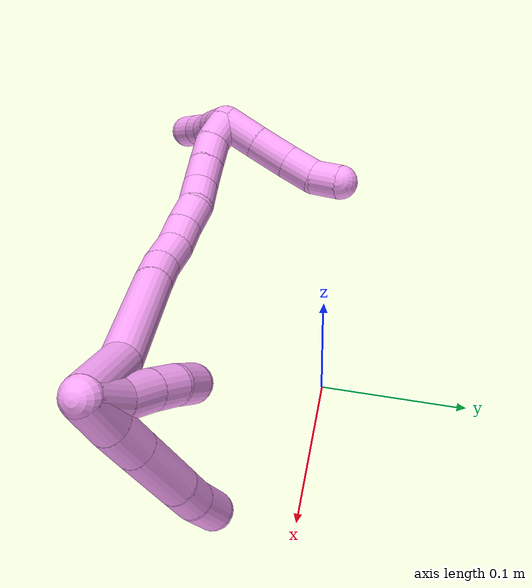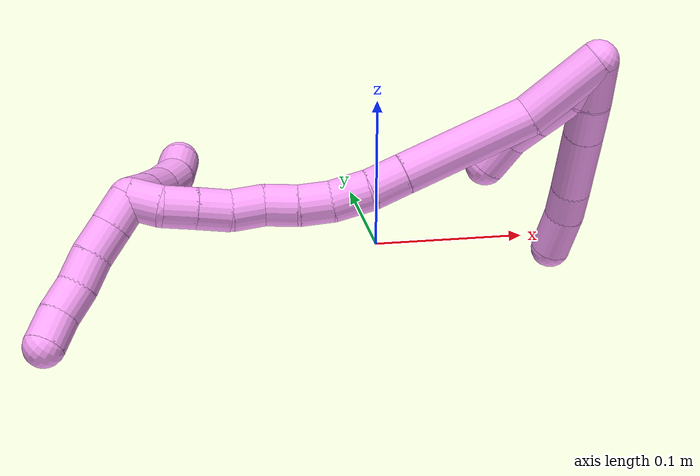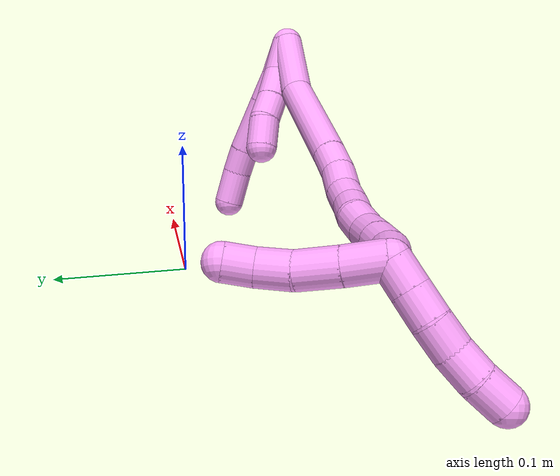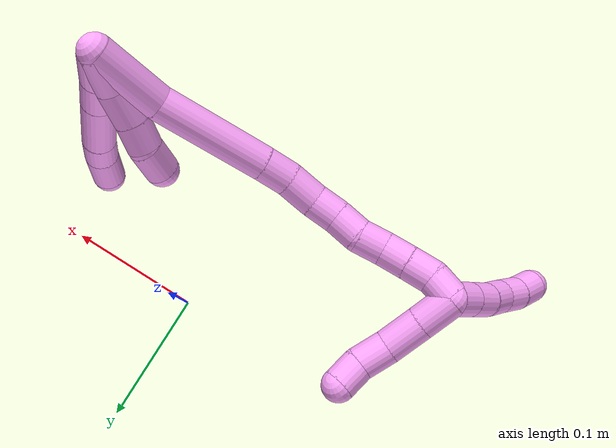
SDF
<sdf version="1.7">
 <world name="default">
  <model name="4">
   <static>0</static>
   <link name="4">
    <collision name="collision-cylinder-e_1_2_8">
     <pose>0.008837 0.002253 -0.011585 -2.94952 0.642718 -2.57823</pose>
     <geometry><cylinder><radius>0.0125</radius><length>0.029487</length></cylinder></geometry>
     <surface>
      <friction><ode><mu>1.16</mu><mu2>1.16</mu2><slip1>0</slip1><slip2>0</slip2></ode></friction>
      <contact><ode><kp>1e+06</kp><kd>1</kd><max_vel>0</max_vel><min_depth>0.001</min_depth></ode></contact>
     </surface>
    </collision>
    <visual name="visual-cylinder-e_1_2_8">
     <pose>0.008837 0.002253 -0.011585 -2.94952 0.642718 -2.57823</pose>
     <geometry><cylinder><radius>0.0125</radius><length>0.029487</length></cylinder></geometry>
     <material><ambient>1 0.65098 0.996078 1</ambient></material>
    </visual>
    <collision name="collision-cylinder-e_2_8_9">
     <pose>0.025137 0.007556 -0.032933 -2.83882 0.630295 -2.26625</pose>
     <geometry><cylinder><radius>0.0125</radius><length>0.025324</length></cylinder></geometry>
     <surface>
      <friction><ode><mu>1.16</mu><mu2>1.16</mu2><slip1>0</slip1><slip2>0</slip2></ode></friction>
      <contact><ode><kp>1e+06</kp><kd>1</kd><max_vel>0</max_vel><min_depth>0.001</min_depth></ode></contact>
     </surface>
    </collision>
    <visual name="visual-cylinder-e_2_8_9">
     <pose>0.025137 0.007556 -0.032933 -2.83882 0.630295 -2.26625</pose>
     <geometry><cylinder><radius>0.0125</radius><length>0.025324</length></cylinder></geometry>
     <material><ambient>1 0.65098 0.996078 1</ambient></material>
    </visual>
    <collision name="collision-cylinder-e_3_9_10">
     <pose>0.046018 0.016107 -0.060485 -2.84163 0.624494 -2.26594</pose>
     <geometry><cylinder><radius>0.0125</radius><length>0.045902</length></cylinder></geometry>
     <surface>
      <friction><ode><mu>1.16</mu><mu2>1.16</mu2><slip1>0</slip1><slip2>0</slip2></ode></friction>
      <contact><ode><kp>1e+06</kp><kd>1</kd><max_vel>0</max_vel><min_depth>0.001</min_depth></ode></contact>
     </surface>
    </collision>
    <visual name="visual-cylinder-e_3_9_10">
     <pose>0.046018 0.016107 -0.060485 -2.84163 0.624494 -2.26594</pose>
     <geometry><cylinder><radius>0.0125</radius><length>0.045902</length></cylinder></geometry>
     <material><ambient>1 0.65098 0.996078 1</ambient></material>
    </visual>
    <collision name="collision-cylinder-e_4_10_11">
     <pose>0.065323 0.023448 -0.086929 -2.93225 0.586896 -2.47241</pose>
     <geometry><cylinder><radius>0.0125</radius><length>0.021257</length></cylinder></geometry>
     <surface>
      <friction><ode><mu>1.16</mu><mu2>1.16</mu2><slip1>0</slip1><slip2>0</slip2></ode></friction>
      <contact><ode><kp>1e+06</kp><kd>1</kd><max_vel>0</max_vel><min_depth>0.001</min_depth></ode></contact>
     </surface>
    </collision>
    <visual name="visual-cylinder-e_4_10_11">
     <pose>0.065323 0.023448 -0.086929 -2.93225 0.586896 -2.47241</pose>
     <geometry><cylinder><radius>0.0125</radius><length>0.021257</length></cylinder></geometry>
     <material><ambient>1 0.65098 0.996078 1</ambient></material>
    </visual>
    <collision name="collision-cylinder-e_5_11_6">
     <pose>0.077295 0.027483 -0.108018 -2.96675 0.44916 -2.40887</pose>
     <geometry><cylinder><radius>0.0125</radius><length>0.02803</length></cylinder></geometry>
     <surface>
      <friction><ode><mu>1.16</mu><mu2>1.16</mu2><slip1>0</slip1><slip2>0</slip2></ode></friction>
      <contact><ode><kp>1e+06</kp><kd>1</kd><max_vel>0</max_vel><min_depth>0.001</min_depth></ode></contact>
     </surface>
    </collision>
    <visual name="visual-cylinder-e_5_11_6">
     <pose>0.077295 0.027483 -0.108018 -2.96675 0.44916 -2.40887</pose>
     <geometry><cylinder><radius>0.0125</radius><length>0.02803</length></cylinder></geometry>
     <material><ambient>1 0.65098 0.996078 1</ambient></material>
    </visual>
    <collision name="collision-cylinder-e_1_2_12">
     <pose>0.002149 0.003194 -0.013988 -2.91711 0.148688 -1.16784</pose>
     <geometry><cylinder><radius>0.0125</radius><length>0.029016</length></cylinder></geometry>
     <surface>
      <friction><ode><mu>1.16</mu><mu2>1.16</mu2><slip1>0</slip1><slip2>0</slip2></ode></friction>
      <contact><ode><kp>1e+06</kp><kd>1</kd><max_vel>0</max_vel><min_depth>0.001</min_depth></ode></contact>
     </surface>
    </collision>
    <visual name="visual-cylinder-e_1_2_12">
     <pose>0.002149 0.003194 -0.013988 -2.91711 0.148688 -1.16784</pose>
     <geometry><cylinder><radius>0.0125</radius><length>0.029016</length></cylinder></geometry>
     <material><ambient>1 0.65098 0.996078 1</ambient></material>
    </visual>
    <collision name="collision-cylinder-e_2_12_13">
     <pose>0.002992 0.010059 -0.040402 -2.85432 -0.100479 0.669176</pose>
     <geometry><cylinder><radius>0.0125</radius><length>0.026045</length></cylinder></geometry>
     <surface>
      <friction><ode><mu>1.16</mu><mu2>1.16</mu2><slip1>0</slip1><slip2>0</slip2></ode></friction>
      <contact><ode><kp>1e+06</kp><kd>1</kd><max_vel>0</max_vel><min_depth>0.001</min_depth></ode></contact>
     </surface>
    </collision>
    <visual name="visual-cylinder-e_2_12_13">
     <pose>0.002992 0.010059 -0.040402 -2.85432 -0.100479 0.669176</pose>
     <geometry><cylinder><radius>0.0125</radius><length>0.026045</length></cylinder></geometry>
     <material><ambient>1 0.65098 0.996078 1</ambient></material>
    </visual>
    <collision name="collision-cylinder-e_3_13_14">
     <pose>0.001101 0.017171 -0.062669 -2.80523 -0.056013 0.327044</pose>
     <geometry><cylinder><radius>0.0125</radius><length>0.020884</length></cylinder></geometry>
     <surface>
      <friction><ode><mu>1.16</mu><mu2>1.16</mu2><slip1>0</slip1><slip2>0</slip2></ode></friction>
      <contact><ode><kp>1e+06</kp><kd>1</kd><max_vel>0</max_vel><min_depth>0.001</min_depth></ode></contact>
     </surface>
    </collision>
    <visual name="visual-cylinder-e_3_13_14">
     <pose>0.001101 0.017171 -0.062669 -2.80523 -0.056013 0.327044</pose>
     <geometry><cylinder><radius>0.0125</radius><length>0.020884</length></cylinder></geometry>
     <material><ambient>1 0.65098 0.996078 1</ambient></material>
    </visual>
    <collision name="collision-cylinder-e_4_14_5">
     <pose>0.001236 0.021745 -0.084463 -3.04705 0.059802 -1.12759</pose>
     <geometry><cylinder><radius>0.0125</radius><length>0.024055</length></cylinder></geometry>
     <surface>
      <friction><ode><mu>1.16</mu><mu2>1.16</mu2><slip1>0</slip1><slip2>0</slip2></ode></friction>
      <contact><ode><kp>1e+06</kp><kd>1</kd><max_vel>0</max_vel><min_depth>0.001</min_depth></ode></contact>
     </surface>
    </collision>
    <visual name="visual-cylinder-e_4_14_5">
     <pose>0.001236 0.021745 -0.084463 -3.04705 0.059802 -1.12759</pose>
     <geometry><cylinder><radius>0.0125</radius><length>0.024055</length></cylinder></geometry>
     <material><ambient>1 0.65098 0.996078 1</ambient></material>
    </visual>
    <collision name="collision-cylinder-e_1_2_15">
     <pose>-0.006725 -0.001534 -0.025446 3.08137 -0.257914 -2.68511</pose>
     <geometry><cylinder><radius>0.0125</radius><length>0.052728</length></cylinder></geometry>
     <surface>
      <friction><ode><mu>1.16</mu><mu2>1.16</mu2><slip1>0</slip1><slip2>0</slip2></ode></friction>
      <contact><ode><kp>1e+06</kp><kd>1</kd><max_vel>0</max_vel><min_depth>0.001</min_depth></ode></contact>
     </surface>
    </collision>
    <visual name="visual-cylinder-e_1_2_15">
     <pose>-0.006725 -0.001534 -0.025446 3.08137 -0.257914 -2.68511</pose>
     <geometry><cylinder><radius>0.0125</radius><length>0.052728</length></cylinder></geometry>
     <material><ambient>1 0.65098 0.996078 1</ambient></material>
    </visual>
    <collision name="collision-cylinder-e_2_15_16">
     <pose>-0.035392 -0.007882 -0.084964 3.00127 -0.567665 -2.66876</pose>
     <geometry><cylinder><radius>0.0125</radius><length>0.081623</length></cylinder></geometry>
     <surface>
      <friction><ode><mu>1.16</mu><mu2>1.16</mu2><slip1>0</slip1><slip2>0</slip2></ode></friction>
      <contact><ode><kp>1e+06</kp><kd>1</kd><max_vel>0</max_vel><min_depth>0.001</min_depth></ode></contact>
     </surface>
    </collision>
    <visual name="visual-cylinder-e_2_15_16">
     <pose>-0.035392 -0.007882 -0.084964 3.00127 -0.567665 -2.66876</pose>
     <geometry><cylinder><radius>0.0125</radius><length>0.081623</length></cylinder></geometry>
     <material><ambient>1 0.65098 0.996078 1</ambient></material>
    </visual>
    <collision name="collision-cylinder-e_3_16_17">
     <pose>-0.062995 -0.01374 -0.128233 3.02839 -0.548904 -2.7444</pose>
     <geometry><cylinder><radius>0.0125</radius><length>0.021698</length></cylinder></geometry>
     <surface>
      <friction><ode><mu>1.16</mu><mu2>1.16</mu2><slip1>0</slip1><slip2>0</slip2></ode></friction>
      <contact><ode><kp>1e+06</kp><kd>1</kd><max_vel>0</max_vel><min_depth>0.001</min_depth></ode></contact>
     </surface>
    </collision>
    <visual name="visual-cylinder-e_3_16_17">
     <pose>-0.062995 -0.01374 -0.128233 3.02839 -0.548904 -2.7444</pose>
     <geometry><cylinder><radius>0.0125</radius><length>0.021698</length></cylinder></geometry>
     <material><ambient>1 0.65098 0.996078 1</ambient></material>
    </visual>
    <collision name="collision-cylinder-e_4_17_18">
     <pose>-0.075406 -0.013848 -0.146998 -3.04393 -0.612075 2.8347</pose>
     <geometry><cylinder><radius>0.0125</radius><length>0.023496</length></cylinder></geometry>
     <surface>
      <friction><ode><mu>1.16</mu><mu2>1.16</mu2><slip1>0</slip1><slip2>0</slip2></ode></friction>
      <contact><ode><kp>1e+06</kp><kd>1</kd><max_vel>0</max_vel><min_depth>0.001</min_depth></ode></contact>
     </surface>
    </collision>
    <visual name="visual-cylinder-e_4_17_18">
     <pose>-0.075406 -0.013848 -0.146998 -3.04393 -0.612075 2.8347</pose>
     <geometry><cylinder><radius>0.0125</radius><length>0.023496</length></cylinder></geometry>
     <material><ambient>1 0.65098 0.996078 1</ambient></material>
    </visual>
    <collision name="collision-cylinder-e_5_18_19">
     <pose>-0.08948 -0.012282 -0.163366 -3.04936 -0.820508 2.93018</pose>
     <geometry><cylinder><radius>0.0125</radius><length>0.020026</length></cylinder></geometry>
     <surface>
      <friction><ode><mu>1.16</mu><mu2>1.16</mu2><slip1>0</slip1><slip2>0</slip2></ode></friction>
      <contact><ode><kp>1e+06</kp><kd>1</kd><max_vel>0</max_vel><min_depth>0.001</min_depth></ode></contact>
     </surface>
    </collision>
    <visual name="visual-cylinder-e_5_18_19">
     <pose>-0.08948 -0.012282 -0.163366 -3.04936 -0.820508 2.93018</pose>
     <geometry><cylinder><radius>0.0125</radius><length>0.020026</length></cylinder></geometry>
     <material><ambient>1 0.65098 0.996078 1</ambient></material>
    </visual>
    <collision name="collision-cylinder-e_6_19_20">
     <pose>-0.104667 -0.009636 -0.176229 -2.82052 -0.888159 2.48549</pose>
     <geometry><cylinder><radius>0.0125</radius><length>0.020265</length></cylinder></geometry>
     <surface>
      <friction><ode><mu>1.16</mu><mu2>1.16</mu2><slip1>0</slip1><slip2>0</slip2></ode></friction>
      <contact><ode><kp>1e+06</kp><kd>1</kd><max_vel>0</max_vel><min_depth>0.001</min_depth></ode></contact>
     </surface>
    </collision>
    <visual name="visual-cylinder-e_6_19_20">
     <pose>-0.104667 -0.009636 -0.176229 -2.82052 -0.888159 2.48549</pose>
     <geometry><cylinder><radius>0.0125</radius><length>0.020265</length></cylinder></geometry>
     <material><ambient>1 0.65098 0.996078 1</ambient></material>
    </visual>
    <collision name="collision-cylinder-e_7_20_21">
     <pose>-0.120077 -0.00834 -0.188927 3.03323 -0.847016 -2.90211</pose>
     <geometry><cylinder><radius>0.0125</radius><length>0.020148</length></cylinder></geometry>
     <surface>
      <friction><ode><mu>1.16</mu><mu2>1.16</mu2><slip1>0</slip1><slip2>0</slip2></ode></friction>
      <contact><ode><kp>1e+06</kp><kd>1</kd><max_vel>0</max_vel><min_depth>0.001</min_depth></ode></contact>
     </surface>
    </collision>
    <visual name="visual-cylinder-e_7_20_21">
     <pose>-0.120077 -0.00834 -0.188927 3.03323 -0.847016 -2.90211</pose>
     <geometry><cylinder><radius>0.0125</radius><length>0.020148</length></cylinder></geometry>
     <material><ambient>1 0.65098 0.996078 1</ambient></material>
    </visual>
    <collision name="collision-cylinder-e_8_21_22">
     <pose>-0.136351 -0.008622 -0.200432 -3.05166 -1.05969 2.98824</pose>
     <geometry><cylinder><radius>0.0125</radius><length>0.020009</length></cylinder></geometry>
     <surface>
      <friction><ode><mu>1.16</mu><mu2>1.16</mu2><slip1>0</slip1><slip2>0</slip2></ode></friction>
      <contact><ode><kp>1e+06</kp><kd>1</kd><max_vel>0</max_vel><min_depth>0.001</min_depth></ode></contact>
     </surface>
    </collision>
    <visual name="visual-cylinder-e_8_21_22">
     <pose>-0.136351 -0.008622 -0.200432 -3.05166 -1.05969 2.98824</pose>
     <geometry><cylinder><radius>0.0125</radius><length>0.020009</length></cylinder></geometry>
     <material><ambient>1 0.65098 0.996078 1</ambient></material>
    </visual>
    <collision name="collision-cylinder-e_9_22_23">
     <pose>-0.153684 -0.007638 -0.210371 -3.03449 -1.03638 2.95411</pose>
     <geometry><cylinder><radius>0.0125</radius><length>0.020003</length></cylinder></geometry>
     <surface>
      <friction><ode><mu>1.16</mu><mu2>1.16</mu2><slip1>0</slip1><slip2>0</slip2></ode></friction>
      <contact><ode><kp>1e+06</kp><kd>1</kd><max_vel>0</max_vel><min_depth>0.001</min_depth></ode></contact>
     </surface>
    </collision>
    <visual name="visual-cylinder-e_9_22_23">
     <pose>-0.153684 -0.007638 -0.210371 -3.03449 -1.03638 2.95411</pose>
     <geometry><cylinder><radius>0.0125</radius><length>0.020003</length></cylinder></geometry>
     <material><ambient>1 0.65098 0.996078 1</ambient></material>
    </visual>
    <collision name="collision-cylinder-e_10_23_1">
     <pose>-0.170399 -0.00334 -0.219932 -2.44591 -0.945197 1.90782</pose>
     <geometry><cylinder><radius>0.0125</radius><length>0.020004</length></cylinder></geometry>
     <surface>
      <friction><ode><mu>1.16</mu><mu2>1.16</mu2><slip1>0</slip1><slip2>0</slip2></ode></friction>
      <contact><ode><kp>1e+06</kp><kd>1</kd><max_vel>0</max_vel><min_depth>0.001</min_depth></ode></contact>
     </surface>
    </collision>
    <visual name="visual-cylinder-e_10_23_1">
     <pose>-0.170399 -0.00334 -0.219932 -2.44591 -0.945197 1.90782</pose>
     <geometry><cylinder><radius>0.0125</radius><length>0.020004</length></cylinder></geometry>
     <material><ambient>1 0.65098 0.996078 1</ambient></material>
    </visual>
    <collision name="collision-cylinder-e_1_1_24">
     <pose>-0.171107 0.012022 -0.225558 -1.66785 0.565365 -0.619611</pose>
     <geometry><cylinder><radius>0.0125</radius><length>0.027625</length></cylinder></geometry>
     <surface>
      <friction><ode><mu>1.16</mu><mu2>1.16</mu2><slip1>0</slip1><slip2>0</slip2></ode></friction>
      <contact><ode><kp>1e+06</kp><kd>1</kd><max_vel>0</max_vel><min_depth>0.001</min_depth></ode></contact>
     </surface>
    </collision>
    <visual name="visual-cylinder-e_1_1_24">
     <pose>-0.171107 0.012022 -0.225558 -1.66785 0.565365 -0.619611</pose>
     <geometry><cylinder><radius>0.0125</radius><length>0.027625</length></cylinder></geometry>
     <material><ambient>1 0.65098 0.996078 1</ambient></material>
    </visual>
    <collision name="collision-cylinder-e_2_24_25">
     <pose>-0.156275 0.035735 -0.227255 -1.61755 0.550191 -0.575138</pose>
     <geometry><cylinder><radius>0.0125</radius><length>0.02843</length></cylinder></geometry>
     <surface>
      <friction><ode><mu>1.16</mu><mu2>1.16</mu2><slip1>0</slip1><slip2>0</slip2></ode></friction>
      <contact><ode><kp>1e+06</kp><kd>1</kd><max_vel>0</max_vel><min_depth>0.001</min_depth></ode></contact>
     </surface>
    </collision>
    <visual name="visual-cylinder-e_2_24_25">
     <pose>-0.156275 0.035735 -0.227255 -1.61755 0.550191 -0.575138</pose>
     <geometry><cylinder><radius>0.0125</radius><length>0.02843</length></cylinder></geometry>
     <material><ambient>1 0.65098 0.996078 1</ambient></material>
    </visual>
    <collision name="collision-cylinder-e_3_25_26">
     <pose>-0.143047 0.057937 -0.226244 -1.41581 0.51589 -0.444159</pose>
     <geometry><cylinder><radius>0.0125</radius><length>0.023499</length></cylinder></geometry>
     <surface>
      <friction><ode><mu>1.16</mu><mu2>1.16</mu2><slip1>0</slip1><slip2>0</slip2></ode></friction>
      <contact><ode><kp>1e+06</kp><kd>1</kd><max_vel>0</max_vel><min_depth>0.001</min_depth></ode></contact>
     </surface>
    </collision>
    <visual name="visual-cylinder-e_3_25_26">
     <pose>-0.143047 0.057937 -0.226244 -1.41581 0.51589 -0.444159</pose>
     <geometry><cylinder><radius>0.0125</radius><length>0.023499</length></cylinder></geometry>
     <material><ambient>1 0.65098 0.996078 1</ambient></material>
    </visual>
    <collision name="collision-cylinder-e_4_26_4">
     <pose>-0.135213 0.077935 -0.223137 -1.41754 0.200647 -0.172186</pose>
     <geometry><cylinder><radius>0.0125</radius><length>0.020446</length></cylinder></geometry>
     <surface>
      <friction><ode><mu>1.16</mu><mu2>1.16</mu2><slip1>0</slip1><slip2>0</slip2></ode></friction>
      <contact><ode><kp>1e+06</kp><kd>1</kd><max_vel>0</max_vel><min_depth>0.001</min_depth></ode></contact>
     </surface>
    </collision>
    <visual name="visual-cylinder-e_4_26_4">
     <pose>-0.135213 0.077935 -0.223137 -1.41754 0.200647 -0.172186</pose>
     <geometry><cylinder><radius>0.0125</radius><length>0.020446</length></cylinder></geometry>
     <material><ambient>1 0.65098 0.996078 1</ambient></material>
    </visual>
    <collision name="collision-cylinder-e_1_1_27">
     <pose>-0.179487 -0.004621 -0.233012 2.61112 -0.098135 -0.357699</pose>
     <geometry><cylinder><radius>0.0125</radius><length>0.02</length></cylinder></geometry>
     <surface>
      <friction><ode><mu>1.16</mu><mu2>1.16</mu2><slip1>0</slip1><slip2>0</slip2></ode></friction>
      <contact><ode><kp>1e+06</kp><kd>1</kd><max_vel>0</max_vel><min_depth>0.001</min_depth></ode></contact>
     </surface>
    </collision>
    <visual name="visual-cylinder-e_1_1_27">
     <pose>-0.179487 -0.004621 -0.233012 2.61112 -0.098135 -0.357699</pose>
     <geometry><cylinder><radius>0.0125</radius><length>0.02</length></cylinder></geometry>
     <material><ambient>1 0.65098 0.996078 1</ambient></material>
    </visual>
    <collision name="collision-cylinder-e_2_27_28">
     <pose>-0.181569 -0.01469 -0.250166 2.61044 -0.110515 -0.401246</pose>
     <geometry><cylinder><radius>0.0125</radius><length>0.02</length></cylinder></geometry>
     <surface>
      <friction><ode><mu>1.16</mu><mu2>1.16</mu2><slip1>0</slip1><slip2>0</slip2></ode></friction>
      <contact><ode><kp>1e+06</kp><kd>1</kd><max_vel>0</max_vel><min_depth>0.001</min_depth></ode></contact>
     </surface>
    </collision>
    <visual name="visual-cylinder-e_2_27_28">
     <pose>-0.181569 -0.01469 -0.250166 2.61044 -0.110515 -0.401246</pose>
     <geometry><cylinder><radius>0.0125</radius><length>0.02</length></cylinder></geometry>
     <material><ambient>1 0.65098 0.996078 1</ambient></material>
    </visual>
    <collision name="collision-cylinder-e_3_28_29">
     <pose>-0.182647 -0.025634 -0.266803 2.50938 0.002492 0.00762</pose>
     <geometry><cylinder><radius>0.0125</radius><length>0.02</length></cylinder></geometry>
     <surface>
      <friction><ode><mu>1.16</mu><mu2>1.16</mu2><slip1>0</slip1><slip2>0</slip2></ode></friction>
      <contact><ode><kp>1e+06</kp><kd>1</kd><max_vel>0</max_vel><min_depth>0.001</min_depth></ode></contact>
     </surface>
    </collision>
    <visual name="visual-cylinder-e_3_28_29">
     <pose>-0.182647 -0.025634 -0.266803 2.50938 0.002492 0.00762</pose>
     <geometry><cylinder><radius>0.0125</radius><length>0.02</length></cylinder></geometry>
     <material><ambient>1 0.65098 0.996078 1</ambient></material>
    </visual>
    <collision name="collision-cylinder-e_4_29_30">
     <pose>-0.184118 -0.037781 -0.282542 2.45891 -0.150085 -0.417119</pose>
     <geometry><cylinder><radius>0.0125</radius><length>0.02</length></cylinder></geometry>
     <surface>
      <friction><ode><mu>1.16</mu><mu2>1.16</mu2><slip1>0</slip1><slip2>0</slip2></ode></friction>
      <contact><ode><kp>1e+06</kp><kd>1</kd><max_vel>0</max_vel><min_depth>0.001</min_depth></ode></contact>
     </surface>
    </collision>
    <visual name="visual-cylinder-e_4_29_30">
     <pose>-0.184118 -0.037781 -0.282542 2.45891 -0.150085 -0.417119</pose>
     <geometry><cylinder><radius>0.0125</radius><length>0.02</length></cylinder></geometry>
     <material><ambient>1 0.65098 0.996078 1</ambient></material>
    </visual>
    <collision name="collision-cylinder-e_5_30_3">
     <pose>-0.186355 -0.051486 -0.296824 2.29542 -0.074298 -0.164707</pose>
     <geometry><cylinder><radius>0.0125</radius><length>0.02</length></cylinder></geometry>
     <surface>
      <friction><ode><mu>1.16</mu><mu2>1.16</mu2><slip1>0</slip1><slip2>0</slip2></ode></friction>
      <contact><ode><kp>1e+06</kp><kd>1</kd><max_vel>0</max_vel><min_depth>0.001</min_depth></ode></contact>
     </surface>
    </collision>
    <visual name="visual-cylinder-e_5_30_3">
     <pose>-0.186355 -0.051486 -0.296824 2.29542 -0.074298 -0.164707</pose>
     <geometry><cylinder><radius>0.0125</radius><length>0.02</length></cylinder></geometry>
     <material><ambient>1 0.65098 0.996078 1</ambient></material>
    </visual>
    <collision name="collision-sphere-3">
     <pose>-0.187097 -0.058953 -0.303434 0 -0 0</pose>
     <geometry><sphere><radius>0.0125</radius></sphere></geometry>
     <surface>
      <friction><ode><mu>1.16</mu><mu2>1.16</mu2><slip1>0</slip1><slip2>0</slip2></ode></friction>
      <contact><ode><kp>1e+06</kp><kd>1</kd><max_vel>0</max_vel><min_depth>0.001</min_depth></ode></contact>
     </surface>
    </collision>
    <visual name="visual-sphere-3">
     <pose>-0.187097 -0.058953 -0.303434 0 -0 0</pose>
     <geometry><sphere><radius>0.0125</radius></sphere></geometry>
     <material><ambient>1 0.65098 0.996078 1</ambient></material>
    </visual>
    <collision name="collision-sphere-30">
     <pose>-0.185613 -0.044019 -0.290213 0 -0 0</pose>
     <geometry><sphere><radius>0.0125</radius></sphere></geometry>
     <surface>
      <friction><ode><mu>1.16</mu><mu2>1.16</mu2><slip1>0</slip1><slip2>0</slip2></ode></friction>
      <contact><ode><kp>1e+06</kp><kd>1</kd><max_vel>0</max_vel><min_depth>0.001</min_depth></ode></contact>
     </surface>
    </collision>
    <visual name="visual-sphere-30">
     <pose>-0.185613 -0.044019 -0.290213 0 -0 0</pose>
     <geometry><sphere><radius>0.0125</radius></sphere></geometry>
     <material><ambient>1 0.65098 0.996078 1</ambient></material>
    </visual>
    <collision name="collision-sphere-29">
     <pose>-0.182622 -0.031543 -0.27487 0 -0 0</pose>
     <geometry><sphere><radius>0.0125</radius></sphere></geometry>
     <surface>
      <friction><ode><mu>1.16</mu><mu2>1.16</mu2><slip1>0</slip1><slip2>0</slip2></ode></friction>
      <contact><ode><kp>1e+06</kp><kd>1</kd><max_vel>0</max_vel><min_depth>0.001</min_depth></ode></contact>
     </surface>
    </collision>
    <visual name="visual-sphere-29">
     <pose>-0.182622 -0.031543 -0.27487 0 -0 0</pose>
     <geometry><sphere><radius>0.0125</radius></sphere></geometry>
     <material><ambient>1 0.65098 0.996078 1</ambient></material>
    </visual>
    <collision name="collision-sphere-28">
     <pose>-0.182672 -0.019725 -0.258736 0 -0 0</pose>
     <geometry><sphere><radius>0.0125</radius></sphere></geometry>
     <surface>
      <friction><ode><mu>1.16</mu><mu2>1.16</mu2><slip1>0</slip1><slip2>0</slip2></ode></friction>
      <contact><ode><kp>1e+06</kp><kd>1</kd><max_vel>0</max_vel><min_depth>0.001</min_depth></ode></contact>
     </surface>
    </collision>
    <visual name="visual-sphere-28">
     <pose>-0.182672 -0.019725 -0.258736 0 -0 0</pose>
     <geometry><sphere><radius>0.0125</radius></sphere></geometry>
     <material><ambient>1 0.65098 0.996078 1</ambient></material>
    </visual>
    <collision name="collision-sphere-27">
     <pose>-0.180466 -0.009656 -0.241597 0 -0 0</pose>
     <geometry><sphere><radius>0.0125</radius></sphere></geometry>
     <surface>
      <friction><ode><mu>1.16</mu><mu2>1.16</mu2><slip1>0</slip1><slip2>0</slip2></ode></friction>
      <contact><ode><kp>1e+06</kp><kd>1</kd><max_vel>0</max_vel><min_depth>0.001</min_depth></ode></contact>
     </surface>
    </collision>
    <visual name="visual-sphere-27">
     <pose>-0.180466 -0.009656 -0.241597 0 -0 0</pose>
     <geometry><sphere><radius>0.0125</radius></sphere></geometry>
     <material><ambient>1 0.65098 0.996078 1</ambient></material>
    </visual>
    <collision name="collision-sphere-4">
     <pose>-0.133175 0.087835 -0.221607 0 -0 0</pose>
     <geometry><sphere><radius>0.0125</radius></sphere></geometry>
     <surface>
      <friction><ode><mu>1.16</mu><mu2>1.16</mu2><slip1>0</slip1><slip2>0</slip2></ode></friction>
      <contact><ode><kp>1e+06</kp><kd>1</kd><max_vel>0</max_vel><min_depth>0.001</min_depth></ode></contact>
     </surface>
    </collision>
    <visual name="visual-sphere-4">
     <pose>-0.133175 0.087835 -0.221607 0 -0 0</pose>
     <geometry><sphere><radius>0.0125</radius></sphere></geometry>
     <material><ambient>1 0.65098 0.996078 1</ambient></material>
    </visual>
    <collision name="collision-sphere-26">
     <pose>-0.13725 0.068035 -0.224666 0 -0 0</pose>
     <geometry><sphere><radius>0.0125</radius></sphere></geometry>
     <surface>
      <friction><ode><mu>1.16</mu><mu2>1.16</mu2><slip1>0</slip1><slip2>0</slip2></ode></friction>
      <contact><ode><kp>1e+06</kp><kd>1</kd><max_vel>0</max_vel><min_depth>0.001</min_depth></ode></contact>
     </surface>
    </collision>
    <visual name="visual-sphere-26">
     <pose>-0.13725 0.068035 -0.224666 0 -0 0</pose>
     <geometry><sphere><radius>0.0125</radius></sphere></geometry>
     <material><ambient>1 0.65098 0.996078 1</ambient></material>
    </visual>
    <collision name="collision-sphere-25">
     <pose>-0.148843 0.047839 -0.227821 0 -0 0</pose>
     <geometry><sphere><radius>0.0125</radius></sphere></geometry>
     <surface>
      <friction><ode><mu>1.16</mu><mu2>1.16</mu2><slip1>0</slip1><slip2>0</slip2></ode></friction>
      <contact><ode><kp>1e+06</kp><kd>1</kd><max_vel>0</max_vel><min_depth>0.001</min_depth></ode></contact>
     </surface>
    </collision>
    <visual name="visual-sphere-25">
     <pose>-0.148843 0.047839 -0.227821 0 -0 0</pose>
     <geometry><sphere><radius>0.0125</radius></sphere></geometry>
     <material><ambient>1 0.65098 0.996078 1</ambient></material>
    </visual>
    <collision name="collision-sphere-24">
     <pose>-0.163707 0.023631 -0.226689 0 -0 0</pose>
     <geometry><sphere><radius>0.0125</radius></sphere></geometry>
     <surface>
      <friction><ode><mu>1.16</mu><mu2>1.16</mu2><slip1>0</slip1><slip2>0</slip2></ode></friction>
      <contact><ode><kp>1e+06</kp><kd>1</kd><max_vel>0</max_vel><min_depth>0.001</min_depth></ode></contact>
     </surface>
    </collision>
    <visual name="visual-sphere-24">
     <pose>-0.163707 0.023631 -0.226689 0 -0 0</pose>
     <geometry><sphere><radius>0.0125</radius></sphere></geometry>
     <material><ambient>1 0.65098 0.996078 1</ambient></material>
    </visual>
    <collision name="collision-sphere-1">
     <pose>-0.178507 0.000414 -0.224428 0 -0 0</pose>
     <geometry><sphere><radius>0.0125</radius></sphere></geometry>
     <surface>
      <friction><ode><mu>1.16</mu><mu2>1.16</mu2><slip1>0</slip1><slip2>0</slip2></ode></friction>
      <contact><ode><kp>1e+06</kp><kd>1</kd><max_vel>0</max_vel><min_depth>0.001</min_depth></ode></contact>
     </surface>
    </collision>
    <visual name="visual-sphere-1">
     <pose>-0.178507 0.000414 -0.224428 0 -0 0</pose>
     <geometry><sphere><radius>0.0125</radius></sphere></geometry>
     <material><ambient>1 0.65098 0.996078 1</ambient></material>
    </visual>
    <collision name="collision-sphere-23">
     <pose>-0.162291 -0.007094 -0.215436 0 -0 0</pose>
     <geometry><sphere><radius>0.0125</radius></sphere></geometry>
     <surface>
      <friction><ode><mu>1.16</mu><mu2>1.16</mu2><slip1>0</slip1><slip2>0</slip2></ode></friction>
      <contact><ode><kp>1e+06</kp><kd>1</kd><max_vel>0</max_vel><min_depth>0.001</min_depth></ode></contact>
     </surface>
    </collision>
    <visual name="visual-sphere-23">
     <pose>-0.162291 -0.007094 -0.215436 0 -0 0</pose>
     <geometry><sphere><radius>0.0125</radius></sphere></geometry>
     <material><ambient>1 0.65098 0.996078 1</ambient></material>
    </visual>
    <collision name="collision-sphere-22">
     <pose>-0.145077 -0.008183 -0.205306 0 -0 0</pose>
     <geometry><sphere><radius>0.0125</radius></sphere></geometry>
     <surface>
      <friction><ode><mu>1.16</mu><mu2>1.16</mu2><slip1>0</slip1><slip2>0</slip2></ode></friction>
      <contact><ode><kp>1e+06</kp><kd>1</kd><max_vel>0</max_vel><min_depth>0.001</min_depth></ode></contact>
     </surface>
    </collision>
    <visual name="visual-sphere-22">
     <pose>-0.145077 -0.008183 -0.205306 0 -0 0</pose>
     <geometry><sphere><radius>0.0125</radius></sphere></geometry>
     <material><ambient>1 0.65098 0.996078 1</ambient></material>
    </visual>
    <collision name="collision-sphere-21">
     <pose>-0.127626 -0.009062 -0.195559 0 -0 0</pose>
     <geometry><sphere><radius>0.0125</radius></sphere></geometry>
     <surface>
      <friction><ode><mu>1.16</mu><mu2>1.16</mu2><slip1>0</slip1><slip2>0</slip2></ode></friction>
      <contact><ode><kp>1e+06</kp><kd>1</kd><max_vel>0</max_vel><min_depth>0.001</min_depth></ode></contact>
     </surface>
    </collision>
    <visual name="visual-sphere-21">
     <pose>-0.127626 -0.009062 -0.195559 0 -0 0</pose>
     <geometry><sphere><radius>0.0125</radius></sphere></geometry>
     <material><ambient>1 0.65098 0.996078 1</ambient></material>
    </visual>
    <collision name="collision-sphere-6">
     <pose>0.08338 0.02968 -0.120451 0 -0 0</pose>
     <geometry><sphere><radius>0.0125</radius></sphere></geometry>
     <surface>
      <friction><ode><mu>1.16</mu><mu2>1.16</mu2><slip1>0</slip1><slip2>0</slip2></ode></friction>
      <contact><ode><kp>1e+06</kp><kd>1</kd><max_vel>0</max_vel><min_depth>0.001</min_depth></ode></contact>
     </surface>
    </collision>
    <visual name="visual-sphere-6">
     <pose>0.08338 0.02968 -0.120451 0 -0 0</pose>
     <geometry><sphere><radius>0.0125</radius></sphere></geometry>
     <material><ambient>1 0.65098 0.996078 1</ambient></material>
    </visual>
    <collision name="collision-sphere-11">
     <pose>0.071209 0.025287 -0.095586 0 -0 0</pose>
     <geometry><sphere><radius>0.0125</radius></sphere></geometry>
     <surface>
      <friction><ode><mu>1.16</mu><mu2>1.16</mu2><slip1>0</slip1><slip2>0</slip2></ode></friction>
      <contact><ode><kp>1e+06</kp><kd>1</kd><max_vel>0</max_vel><min_depth>0.001</min_depth></ode></contact>
     </surface>
    </collision>
    <visual name="visual-sphere-11">
     <pose>0.071209 0.025287 -0.095586 0 -0 0</pose>
     <geometry><sphere><radius>0.0125</radius></sphere></geometry>
     <material><ambient>1 0.65098 0.996078 1</ambient></material>
    </visual>
    <collision name="collision-sphere-10">
     <pose>0.059438 0.021609 -0.078273 0 -0 0</pose>
     <geometry><sphere><radius>0.0125</radius></sphere></geometry>
     <surface>
      <friction><ode><mu>1.16</mu><mu2>1.16</mu2><slip1>0</slip1><slip2>0</slip2></ode></friction>
      <contact><ode><kp>1e+06</kp><kd>1</kd><max_vel>0</max_vel><min_depth>0.001</min_depth></ode></contact>
     </surface>
    </collision>
    <visual name="visual-sphere-10">
     <pose>0.059438 0.021609 -0.078273 0 -0 0</pose>
     <geometry><sphere><radius>0.0125</radius></sphere></geometry>
     <material><ambient>1 0.65098 0.996078 1</ambient></material>
    </visual>
    <collision name="collision-sphere-9">
     <pose>0.032599 0.010606 -0.042697 0 -0 0</pose>
     <geometry><sphere><radius>0.0125</radius></sphere></geometry>
     <surface>
      <friction><ode><mu>1.16</mu><mu2>1.16</mu2><slip1>0</slip1><slip2>0</slip2></ode></friction>
      <contact><ode><kp>1e+06</kp><kd>1</kd><max_vel>0</max_vel><min_depth>0.001</min_depth></ode></contact>
     </surface>
    </collision>
    <visual name="visual-sphere-9">
     <pose>0.032599 0.010606 -0.042697 0 -0 0</pose>
     <geometry><sphere><radius>0.0125</radius></sphere></geometry>
     <material><ambient>1 0.65098 0.996078 1</ambient></material>
    </visual>
    <collision name="collision-sphere-2">
     <geometry><sphere><radius>0.0125</radius></sphere></geometry>
     <surface>
      <friction><ode><mu>1.16</mu><mu2>1.16</mu2><slip1>0</slip1><slip2>0</slip2></ode></friction>
      <contact><ode><kp>1e+06</kp><kd>1</kd><max_vel>0</max_vel><min_depth>0.001</min_depth></ode></contact>
     </surface>
    </collision>
    <visual name="visual-sphere-2">
     <geometry><sphere><radius>0.0125</radius></sphere></geometry>
     <material><ambient>1 0.65098 0.996078 1</ambient></material>
    </visual>
    <collision name="collision-sphere-19">
     <pose>-0.096805 -0.011653 -0.170164 0 -0 0</pose>
     <geometry><sphere><radius>0.0125</radius></sphere></geometry>
     <surface>
      <friction><ode><mu>1.16</mu><mu2>1.16</mu2><slip1>0</slip1><slip2>0</slip2></ode></friction>
      <contact><ode><kp>1e+06</kp><kd>1</kd><max_vel>0</max_vel><min_depth>0.001</min_depth></ode></contact>
     </surface>
    </collision>
    <visual name="visual-sphere-19">
     <pose>-0.096805 -0.011653 -0.170164 0 -0 0</pose>
     <geometry><sphere><radius>0.0125</radius></sphere></geometry>
     <material><ambient>1 0.65098 0.996078 1</ambient></material>
    </visual>
    <collision name="collision-sphere-8">
     <pose>0.017674 0.004506 -0.023169 0 -0 0</pose>
     <geometry><sphere><radius>0.0125</radius></sphere></geometry>
     <surface>
      <friction><ode><mu>1.16</mu><mu2>1.16</mu2><slip1>0</slip1><slip2>0</slip2></ode></friction>
      <contact><ode><kp>1e+06</kp><kd>1</kd><max_vel>0</max_vel><min_depth>0.001</min_depth></ode></contact>
     </surface>
    </collision>
    <visual name="visual-sphere-8">
     <pose>0.017674 0.004506 -0.023169 0 -0 0</pose>
     <geometry><sphere><radius>0.0125</radius></sphere></geometry>
     <material><ambient>1 0.65098 0.996078 1</ambient></material>
    </visual>
    <collision name="collision-sphere-12">
     <pose>0.004298 0.006388 -0.027976 0 -0 0</pose>
     <geometry><sphere><radius>0.0125</radius></sphere></geometry>
     <surface>
      <friction><ode><mu>1.16</mu><mu2>1.16</mu2><slip1>0</slip1><slip2>0</slip2></ode></friction>
      <contact><ode><kp>1e+06</kp><kd>1</kd><max_vel>0</max_vel><min_depth>0.001</min_depth></ode></contact>
     </surface>
    </collision>
    <visual name="visual-sphere-12">
     <pose>0.004298 0.006388 -0.027976 0 -0 0</pose>
     <geometry><sphere><radius>0.0125</radius></sphere></geometry>
     <material><ambient>1 0.65098 0.996078 1</ambient></material>
    </visual>
    <collision name="collision-sphere-13">
     <pose>0.001686 0.01373 -0.052827 0 -0 0</pose>
     <geometry><sphere><radius>0.0125</radius></sphere></geometry>
     <surface>
      <friction><ode><mu>1.16</mu><mu2>1.16</mu2><slip1>0</slip1><slip2>0</slip2></ode></friction>
      <contact><ode><kp>1e+06</kp><kd>1</kd><max_vel>0</max_vel><min_depth>0.001</min_depth></ode></contact>
     </surface>
    </collision>
    <visual name="visual-sphere-13">
     <pose>0.001686 0.01373 -0.052827 0 -0 0</pose>
     <geometry><sphere><radius>0.0125</radius></sphere></geometry>
     <material><ambient>1 0.65098 0.996078 1</ambient></material>
    </visual>
    <collision name="collision-sphere-14">
     <pose>0.000517 0.020612 -0.07251 0 -0 0</pose>
     <geometry><sphere><radius>0.0125</radius></sphere></geometry>
     <surface>
      <friction><ode><mu>1.16</mu><mu2>1.16</mu2><slip1>0</slip1><slip2>0</slip2></ode></friction>
      <contact><ode><kp>1e+06</kp><kd>1</kd><max_vel>0</max_vel><min_depth>0.001</min_depth></ode></contact>
     </surface>
    </collision>
    <visual name="visual-sphere-14">
     <pose>0.000517 0.020612 -0.07251 0 -0 0</pose>
     <geometry><sphere><radius>0.0125</radius></sphere></geometry>
     <material><ambient>1 0.65098 0.996078 1</ambient></material>
    </visual>
    <collision name="collision-sphere-5">
     <pose>0.001954 0.022879 -0.096415 0 -0 0</pose>
     <geometry><sphere><radius>0.0125</radius></sphere></geometry>
     <surface>
      <friction><ode><mu>1.16</mu><mu2>1.16</mu2><slip1>0</slip1><slip2>0</slip2></ode></friction>
      <contact><ode><kp>1e+06</kp><kd>1</kd><max_vel>0</max_vel><min_depth>0.001</min_depth></ode></contact>
     </surface>
    </collision>
    <visual name="visual-sphere-5">
     <pose>0.001954 0.022879 -0.096415 0 -0 0</pose>
     <geometry><sphere><radius>0.0125</radius></sphere></geometry>
     <material><ambient>1 0.65098 0.996078 1</ambient></material>
    </visual>
    <collision name="collision-sphere-15">
     <pose>-0.013449 -0.003069 -0.050892 0 -0 0</pose>
     <geometry><sphere><radius>0.0125</radius></sphere></geometry>
     <surface>
      <friction><ode><mu>1.16</mu><mu2>1.16</mu2><slip1>0</slip1><slip2>0</slip2></ode></friction>
      <contact><ode><kp>1e+06</kp><kd>1</kd><max_vel>0</max_vel><min_depth>0.001</min_depth></ode></contact>
     </surface>
    </collision>
    <visual name="visual-sphere-15">
     <pose>-0.013449 -0.003069 -0.050892 0 -0 0</pose>
     <geometry><sphere><radius>0.0125</radius></sphere></geometry>
     <material><ambient>1 0.65098 0.996078 1</ambient></material>
    </visual>
    <collision name="collision-sphere-16">
     <pose>-0.057335 -0.012695 -0.119037 0 -0 0</pose>
     <geometry><sphere><radius>0.0125</radius></sphere></geometry>
     <surface>
      <friction><ode><mu>1.16</mu><mu2>1.16</mu2><slip1>0</slip1><slip2>0</slip2></ode></friction>
      <contact><ode><kp>1e+06</kp><kd>1</kd><max_vel>0</max_vel><min_depth>0.001</min_depth></ode></contact>
     </surface>
    </collision>
    <visual name="visual-sphere-16">
     <pose>-0.057335 -0.012695 -0.119037 0 -0 0</pose>
     <geometry><sphere><radius>0.0125</radius></sphere></geometry>
     <material><ambient>1 0.65098 0.996078 1</ambient></material>
    </visual>
    <collision name="collision-sphere-17">
     <pose>-0.068656 -0.014786 -0.137428 0 -0 0</pose>
     <geometry><sphere><radius>0.0125</radius></sphere></geometry>
     <surface>
      <friction><ode><mu>1.16</mu><mu2>1.16</mu2><slip1>0</slip1><slip2>0</slip2></ode></friction>
      <contact><ode><kp>1e+06</kp><kd>1</kd><max_vel>0</max_vel><min_depth>0.001</min_depth></ode></contact>
     </surface>
    </collision>
    <visual name="visual-sphere-17">
     <pose>-0.068656 -0.014786 -0.137428 0 -0 0</pose>
     <geometry><sphere><radius>0.0125</radius></sphere></geometry>
     <material><ambient>1 0.65098 0.996078 1</ambient></material>
    </visual>
    <collision name="collision-sphere-18">
     <pose>-0.082156 -0.012911 -0.156567 0 -0 0</pose>
     <geometry><sphere><radius>0.0125</radius></sphere></geometry>
     <surface>
      <friction><ode><mu>1.16</mu><mu2>1.16</mu2><slip1>0</slip1><slip2>0</slip2></ode></friction>
      <contact><ode><kp>1e+06</kp><kd>1</kd><max_vel>0</max_vel><min_depth>0.001</min_depth></ode></contact>
     </surface>
    </collision>
    <visual name="visual-sphere-18">
     <pose>-0.082156 -0.012911 -0.156567 0 -0 0</pose>
     <geometry><sphere><radius>0.0125</radius></sphere></geometry>
     <material><ambient>1 0.65098 0.996078 1</ambient></material>
    </visual>
    <collision name="collision-sphere-20">
     <pose>-0.112528 -0.007619 -0.182295 0 -0 0</pose>
     <geometry><sphere><radius>0.0125</radius></sphere></geometry>
     <surface>
      <friction><ode><mu>1.16</mu><mu2>1.16</mu2><slip1>0</slip1><slip2>0</slip2></ode></friction>
      <contact><ode><kp>1e+06</kp><kd>1</kd><max_vel>0</max_vel><min_depth>0.001</min_depth></ode></contact>
     </surface>
    </collision>
    <visual name="visual-sphere-20">
     <pose>-0.112528 -0.007619 -0.182295 0 -0 0</pose>
     <geometry><sphere><radius>0.0125</radius></sphere></geometry>
     <material><ambient>1 0.65098 0.996078 1</ambient></material>
    </visual>
    <inertial>
     <pose>-0.064996 0.003696 -0.134086 0 -0 0</pose>
     <mass>0.75</mass>
     <inertia><ixx>-9.6e-05</ixx><ixy>0</ixy><ixz>0</ixz><iyy>4e-05</iyy><iyz>0</iyz><izz>-2.2e-05</izz></inertia>
    </inertial>
   </link>
   <pose>0.11223 -0.103486 0.151398 0.196277 0.633201 0.146281</pose>
  </model>
 </world>
</sdf>
